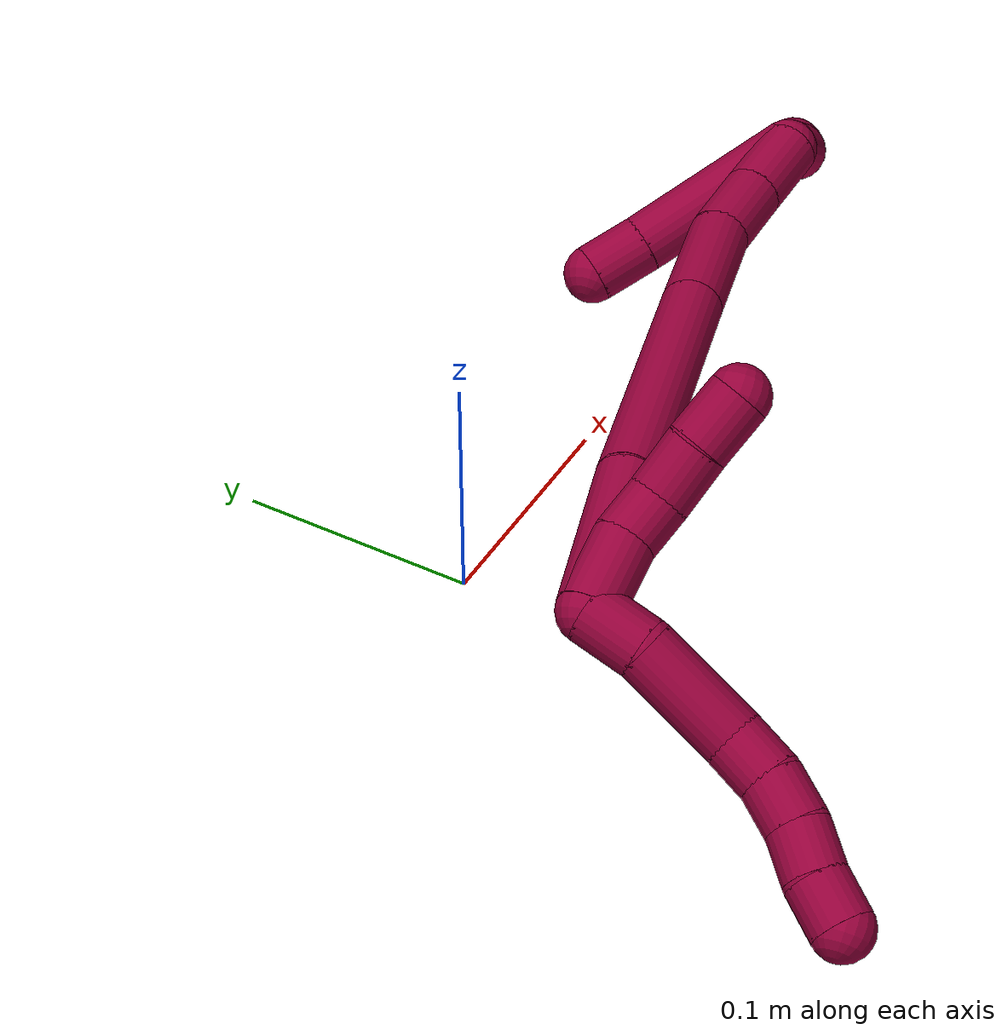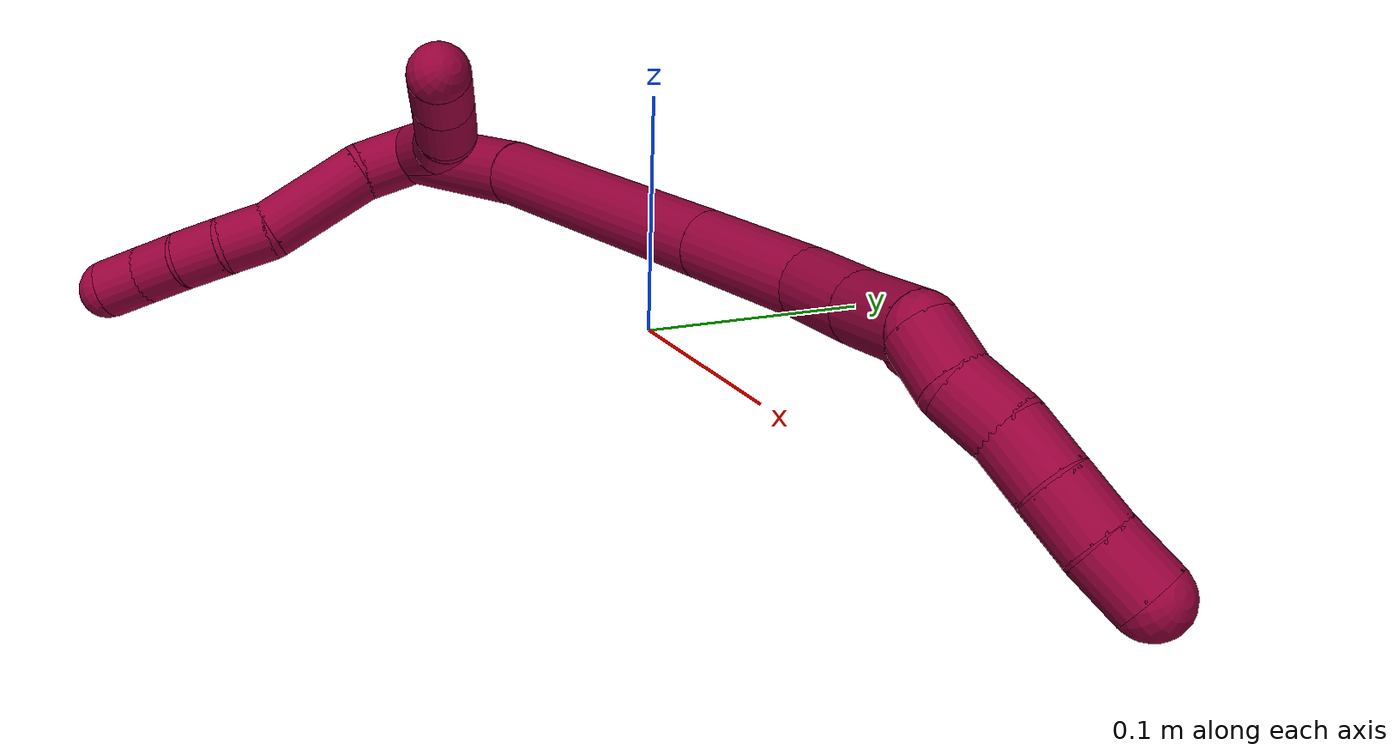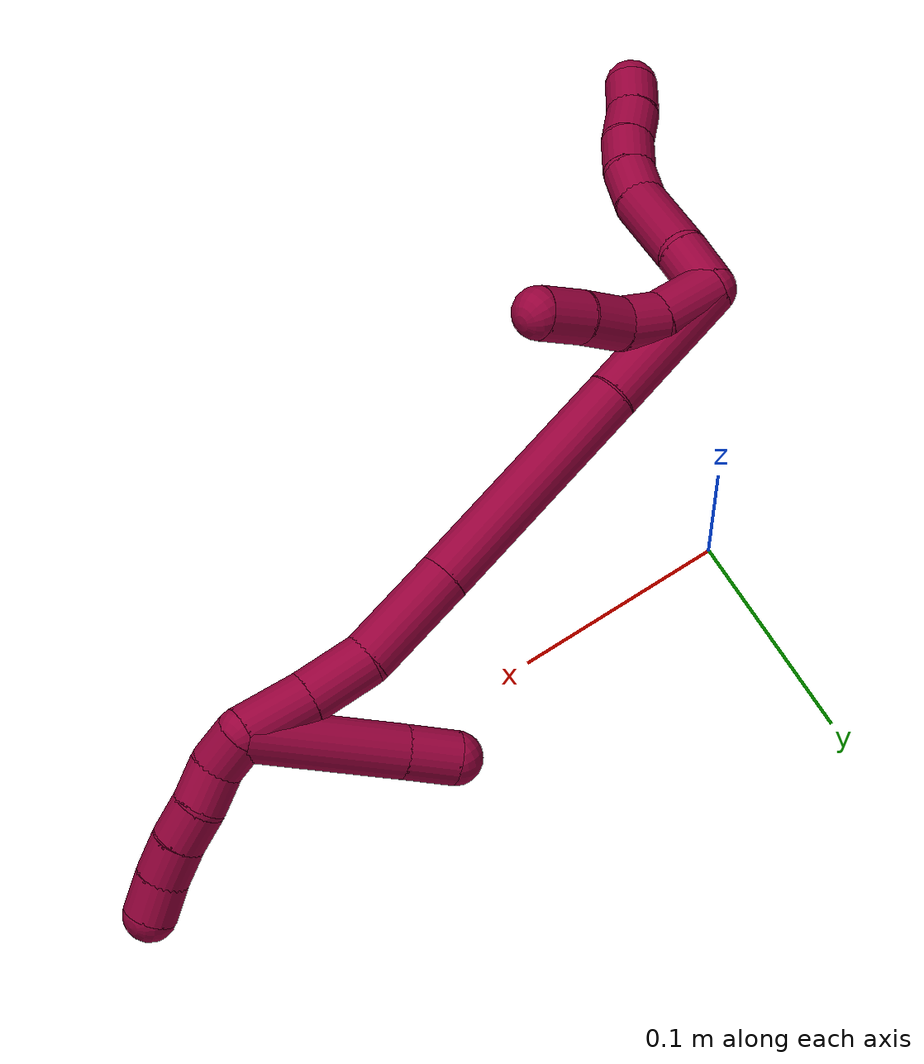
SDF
<sdf version="1.7">
 <world name="default">
  <model name="8">
   <static>0</static>
   <link name="8">
    <collision name="collision-cylinder-e_1_2_8">
     <pose>-0.004192 -0.0109 -0.003934 1.91719 -0.347099 -0.489322</pose>
     <geometry><cylinder><radius>0.0125</radius><length>0.024646</length></cylinder></geometry>
     <surface>
      <friction><ode><mu>1.16</mu><mu2>1.16</mu2><slip1>0</slip1><slip2>0</slip2></ode></friction>
      <contact><ode><kp>1e+06</kp><kd>1</kd><max_vel>0</max_vel><min_depth>0.001</min_depth></ode></contact>
     </surface>
    </collision>
    <visual name="visual-cylinder-e_1_2_8">
     <pose>-0.004192 -0.0109 -0.003934 1.91719 -0.347099 -0.489322</pose>
     <geometry><cylinder><radius>0.0125</radius><length>0.024646</length></cylinder></geometry>
     <material><ambient>0.584314 0 0.227451 1</ambient></material>
    </visual>
    <collision name="collision-cylinder-e_2_8_9">
     <pose>-0.01092 -0.042074 -0.017551 2.01634 -0.112379 -0.177922</pose>
     <geometry><cylinder><radius>0.0125</radius><length>0.045221</length></cylinder></geometry>
     <surface>
      <friction><ode><mu>1.16</mu><mu2>1.16</mu2><slip1>0</slip1><slip2>0</slip2></ode></friction>
      <contact><ode><kp>1e+06</kp><kd>1</kd><max_vel>0</max_vel><min_depth>0.001</min_depth></ode></contact>
     </surface>
    </collision>
    <visual name="visual-cylinder-e_2_8_9">
     <pose>-0.01092 -0.042074 -0.017551 2.01634 -0.112379 -0.177922</pose>
     <geometry><cylinder><radius>0.0125</radius><length>0.045221</length></cylinder></geometry>
     <material><ambient>0.584314 0 0.227451 1</ambient></material>
    </visual>
    <collision name="collision-cylinder-e_3_9_10">
     <pose>-0.016802 -0.070125 -0.032621 2.17672 -0.340052 -0.633564</pose>
     <geometry><cylinder><radius>0.0125</radius><length>0.020069</length></cylinder></geometry>
     <surface>
      <friction><ode><mu>1.16</mu><mu2>1.16</mu2><slip1>0</slip1><slip2>0</slip2></ode></friction>
      <contact><ode><kp>1e+06</kp><kd>1</kd><max_vel>0</max_vel><min_depth>0.001</min_depth></ode></contact>
     </surface>
    </collision>
    <visual name="visual-cylinder-e_3_9_10">
     <pose>-0.016802 -0.070125 -0.032621 2.17672 -0.340052 -0.633564</pose>
     <geometry><cylinder><radius>0.0125</radius><length>0.020069</length></cylinder></geometry>
     <material><ambient>0.584314 0 0.227451 1</ambient></material>
    </visual>
    <collision name="collision-cylinder-e_4_10_11">
     <pose>-0.023111 -0.084289 -0.045149 2.41169 -0.299809 -0.752922</pose>
     <geometry><cylinder><radius>0.0125</radius><length>0.020058</length></cylinder></geometry>
     <surface>
      <friction><ode><mu>1.16</mu><mu2>1.16</mu2><slip1>0</slip1><slip2>0</slip2></ode></friction>
      <contact><ode><kp>1e+06</kp><kd>1</kd><max_vel>0</max_vel><min_depth>0.001</min_depth></ode></contact>
     </surface>
    </collision>
    <visual name="visual-cylinder-e_4_10_11">
     <pose>-0.023111 -0.084289 -0.045149 2.41169 -0.299809 -0.752922</pose>
     <geometry><cylinder><radius>0.0125</radius><length>0.020058</length></cylinder></geometry>
     <material><ambient>0.584314 0 0.227451 1</ambient></material>
    </visual>
    <collision name="collision-cylinder-e_5_11_12">
     <pose>-0.028453 -0.095776 -0.06056 2.58928 -0.240245 -0.805287</pose>
     <geometry><cylinder><radius>0.0125</radius><length>0.020005</length></cylinder></geometry>
     <surface>
      <friction><ode><mu>1.16</mu><mu2>1.16</mu2><slip1>0</slip1><slip2>0</slip2></ode></friction>
      <contact><ode><kp>1e+06</kp><kd>1</kd><max_vel>0</max_vel><min_depth>0.001</min_depth></ode></contact>
     </surface>
    </collision>
    <visual name="visual-cylinder-e_5_11_12">
     <pose>-0.028453 -0.095776 -0.06056 2.58928 -0.240245 -0.805287</pose>
     <geometry><cylinder><radius>0.0125</radius><length>0.020005</length></cylinder></geometry>
     <material><ambient>0.584314 0 0.227451 1</ambient></material>
    </visual>
    <collision name="collision-cylinder-e_6_12_6">
     <pose>-0.0335 -0.107228 -0.076077 2.42156 -0.270019 -0.692632</pose>
     <geometry><cylinder><radius>0.0125</radius><length>0.020001</length></cylinder></geometry>
     <surface>
      <friction><ode><mu>1.16</mu><mu2>1.16</mu2><slip1>0</slip1><slip2>0</slip2></ode></friction>
      <contact><ode><kp>1e+06</kp><kd>1</kd><max_vel>0</max_vel><min_depth>0.001</min_depth></ode></contact>
     </surface>
    </collision>
    <visual name="visual-cylinder-e_6_12_6">
     <pose>-0.0335 -0.107228 -0.076077 2.42156 -0.270019 -0.692632</pose>
     <geometry><cylinder><radius>0.0125</radius><length>0.020001</length></cylinder></geometry>
     <material><ambient>0.584314 0 0.227451 1</ambient></material>
    </visual>
    <collision name="collision-cylinder-e_1_2_13">
     <pose>0.001202 -0.002585 0.015541 0.164834 0.076172 0.006295</pose>
     <geometry><cylinder><radius>0.0125</radius><length>0.031602</length></cylinder></geometry>
     <surface>
      <friction><ode><mu>1.16</mu><mu2>1.16</mu2><slip1>0</slip1><slip2>0</slip2></ode></friction>
      <contact><ode><kp>1e+06</kp><kd>1</kd><max_vel>0</max_vel><min_depth>0.001</min_depth></ode></contact>
     </surface>
    </collision>
    <visual name="visual-cylinder-e_1_2_13">
     <pose>0.001202 -0.002585 0.015541 0.164834 0.076172 0.006295</pose>
     <geometry><cylinder><radius>0.0125</radius><length>0.031602</length></cylinder></geometry>
     <material><ambient>0.584314 0 0.227451 1</ambient></material>
    </visual>
    <collision name="collision-cylinder-e_2_13_14">
     <pose>0.000277 -0.008328 0.040635 0.319207 -0.20847 -0.033677</pose>
     <geometry><cylinder><radius>0.0125</radius><length>0.020566</length></cylinder></geometry>
     <surface>
      <friction><ode><mu>1.16</mu><mu2>1.16</mu2><slip1>0</slip1><slip2>0</slip2></ode></friction>
      <contact><ode><kp>1e+06</kp><kd>1</kd><max_vel>0</max_vel><min_depth>0.001</min_depth></ode></contact>
     </surface>
    </collision>
    <visual name="visual-cylinder-e_2_13_14">
     <pose>0.000277 -0.008328 0.040635 0.319207 -0.20847 -0.033677</pose>
     <geometry><cylinder><radius>0.0125</radius><length>0.020566</length></cylinder></geometry>
     <material><ambient>0.584314 0 0.227451 1</ambient></material>
    </visual>
    <collision name="collision-cylinder-e_3_14_15">
     <pose>-0.007705 -0.013701 0.060345 0.214797 -0.512789 -0.056515</pose>
     <geometry><cylinder><radius>0.0125</radius><length>0.023862</length></cylinder></geometry>
     <surface>
      <friction><ode><mu>1.16</mu><mu2>1.16</mu2><slip1>0</slip1><slip2>0</slip2></ode></friction>
      <contact><ode><kp>1e+06</kp><kd>1</kd><max_vel>0</max_vel><min_depth>0.001</min_depth></ode></contact>
     </surface>
    </collision>
    <visual name="visual-cylinder-e_3_14_15">
     <pose>-0.007705 -0.013701 0.060345 0.214797 -0.512789 -0.056515</pose>
     <geometry><cylinder><radius>0.0125</radius><length>0.023862</length></cylinder></geometry>
     <material><ambient>0.584314 0 0.227451 1</ambient></material>
    </visual>
    <collision name="collision-cylinder-e_4_15_5">
     <pose>-0.018606 -0.01902 0.08092 0.289507 -0.434737 -0.064368</pose>
     <geometry><cylinder><radius>0.0125</radius><length>0.02397</length></cylinder></geometry>
     <surface>
      <friction><ode><mu>1.16</mu><mu2>1.16</mu2><slip1>0</slip1><slip2>0</slip2></ode></friction>
      <contact><ode><kp>1e+06</kp><kd>1</kd><max_vel>0</max_vel><min_depth>0.001</min_depth></ode></contact>
     </surface>
    </collision>
    <visual name="visual-cylinder-e_4_15_5">
     <pose>-0.018606 -0.01902 0.08092 0.289507 -0.434737 -0.064368</pose>
     <geometry><cylinder><radius>0.0125</radius><length>0.02397</length></cylinder></geometry>
     <material><ambient>0.584314 0 0.227451 1</ambient></material>
    </visual>
    <collision name="collision-cylinder-e_1_2_16">
     <pose>0.013499 -0.00315 0.032147 0.097683 0.395854 0.019606</pose>
     <geometry><cylinder><radius>0.0125</radius><length>0.070016</length></cylinder></geometry>
     <surface>
      <friction><ode><mu>1.16</mu><mu2>1.16</mu2><slip1>0</slip1><slip2>0</slip2></ode></friction>
      <contact><ode><kp>1e+06</kp><kd>1</kd><max_vel>0</max_vel><min_depth>0.001</min_depth></ode></contact>
     </surface>
    </collision>
    <visual name="visual-cylinder-e_1_2_16">
     <pose>0.013499 -0.00315 0.032147 0.097683 0.395854 0.019606</pose>
     <geometry><cylinder><radius>0.0125</radius><length>0.070016</length></cylinder></geometry>
     <material><ambient>0.584314 0 0.227451 1</ambient></material>
    </visual>
    <collision name="collision-cylinder-e_2_16_17">
     <pose>0.052465 -0.015172 0.114365 0.17536 0.464297 0.041558</pose>
     <geometry><cylinder><radius>0.0125</radius><length>0.113746</length></cylinder></geometry>
     <surface>
      <friction><ode><mu>1.16</mu><mu2>1.16</mu2><slip1>0</slip1><slip2>0</slip2></ode></friction>
      <contact><ode><kp>1e+06</kp><kd>1</kd><max_vel>0</max_vel><min_depth>0.001</min_depth></ode></contact>
     </surface>
    </collision>
    <visual name="visual-cylinder-e_2_16_17">
     <pose>0.052465 -0.015172 0.114365 0.17536 0.464297 0.041558</pose>
     <geometry><cylinder><radius>0.0125</radius><length>0.113746</length></cylinder></geometry>
     <material><ambient>0.584314 0 0.227451 1</ambient></material>
    </visual>
    <collision name="collision-cylinder-e_3_17_18">
     <pose>0.089299 -0.028278 0.186882 0.186451 0.461771 0.043951</pose>
     <geometry><cylinder><radius>0.0125</radius><length>0.051024</length></cylinder></geometry>
     <surface>
      <friction><ode><mu>1.16</mu><mu2>1.16</mu2><slip1>0</slip1><slip2>0</slip2></ode></friction>
      <contact><ode><kp>1e+06</kp><kd>1</kd><max_vel>0</max_vel><min_depth>0.001</min_depth></ode></contact>
     </surface>
    </collision>
    <visual name="visual-cylinder-e_3_17_18">
     <pose>0.089299 -0.028278 0.186882 0.186451 0.461771 0.043951</pose>
     <geometry><cylinder><radius>0.0125</radius><length>0.051024</length></cylinder></geometry>
     <material><ambient>0.584314 0 0.227451 1</ambient></material>
    </visual>
    <collision name="collision-cylinder-e_4_18_19">
     <pose>0.105181 -0.037836 0.223777 0.352985 0.285178 0.051197</pose>
     <geometry><cylinder><radius>0.0125</radius><length>0.032099</length></cylinder></geometry>
     <surface>
      <friction><ode><mu>1.16</mu><mu2>1.16</mu2><slip1>0</slip1><slip2>0</slip2></ode></friction>
      <contact><ode><kp>1e+06</kp><kd>1</kd><max_vel>0</max_vel><min_depth>0.001</min_depth></ode></contact>
     </surface>
    </collision>
    <visual name="visual-cylinder-e_4_18_19">
     <pose>0.105181 -0.037836 0.223777 0.352985 0.285178 0.051197</pose>
     <geometry><cylinder><radius>0.0125</radius><length>0.032099</length></cylinder></geometry>
     <material><ambient>0.584314 0 0.227451 1</ambient></material>
    </visual>
    <collision name="collision-cylinder-e_5_19_1">
     <pose>0.113008 -0.04878 0.253448 0.353732 0.201381 0.036112</pose>
     <geometry><cylinder><radius>0.0125</radius><length>0.033116</length></cylinder></geometry>
     <surface>
      <friction><ode><mu>1.16</mu><mu2>1.16</mu2><slip1>0</slip1><slip2>0</slip2></ode></friction>
      <contact><ode><kp>1e+06</kp><kd>1</kd><max_vel>0</max_vel><min_depth>0.001</min_depth></ode></contact>
     </surface>
    </collision>
    <visual name="visual-cylinder-e_5_19_1">
     <pose>0.113008 -0.04878 0.253448 0.353732 0.201381 0.036112</pose>
     <geometry><cylinder><radius>0.0125</radius><length>0.033116</length></cylinder></geometry>
     <material><ambient>0.584314 0 0.227451 1</ambient></material>
    </visual>
    <collision name="collision-cylinder-e_1_1_20">
     <pose>0.124006 -0.058867 0.273245 0.773116 0.876739 0.377097</pose>
     <geometry><cylinder><radius>0.0125</radius><length>0.02</length></cylinder></geometry>
     <surface>
      <friction><ode><mu>1.16</mu><mu2>1.16</mu2><slip1>0</slip1><slip2>0</slip2></ode></friction>
      <contact><ode><kp>1e+06</kp><kd>1</kd><max_vel>0</max_vel><min_depth>0.001</min_depth></ode></contact>
     </surface>
    </collision>
    <visual name="visual-cylinder-e_1_1_20">
     <pose>0.124006 -0.058867 0.273245 0.773116 0.876739 0.377097</pose>
     <geometry><cylinder><radius>0.0125</radius><length>0.02</length></cylinder></geometry>
     <material><ambient>0.584314 0 0.227451 1</ambient></material>
    </visual>
    <collision name="collision-cylinder-e_2_20_21">
     <pose>0.140036 -0.064849 0.283124 0.278358 0.986876 0.150394</pose>
     <geometry><cylinder><radius>0.0125</radius><length>0.02</length></cylinder></geometry>
     <surface>
      <friction><ode><mu>1.16</mu><mu2>1.16</mu2><slip1>0</slip1><slip2>0</slip2></ode></friction>
      <contact><ode><kp>1e+06</kp><kd>1</kd><max_vel>0</max_vel><min_depth>0.001</min_depth></ode></contact>
     </surface>
    </collision>
    <visual name="visual-cylinder-e_2_20_21">
     <pose>0.140036 -0.064849 0.283124 0.278358 0.986876 0.150394</pose>
     <geometry><cylinder><radius>0.0125</radius><length>0.02</length></cylinder></geometry>
     <material><ambient>0.584314 0 0.227451 1</ambient></material>
    </visual>
    <collision name="collision-cylinder-e_3_21_22">
     <pose>0.15673 -0.069637 0.292846 0.637365 0.98834 0.351827</pose>
     <geometry><cylinder><radius>0.0125</radius><length>0.02</length></cylinder></geometry>
     <surface>
      <friction><ode><mu>1.16</mu><mu2>1.16</mu2><slip1>0</slip1><slip2>0</slip2></ode></friction>
      <contact><ode><kp>1e+06</kp><kd>1</kd><max_vel>0</max_vel><min_depth>0.001</min_depth></ode></contact>
     </surface>
    </collision>
    <visual name="visual-cylinder-e_3_21_22">
     <pose>0.15673 -0.069637 0.292846 0.637365 0.98834 0.351827</pose>
     <geometry><cylinder><radius>0.0125</radius><length>0.02</length></cylinder></geometry>
     <material><ambient>0.584314 0 0.227451 1</ambient></material>
    </visual>
    <collision name="collision-cylinder-e_4_22_23">
     <pose>0.17395 -0.075579 0.301038 0.615739 1.09056 0.381113</pose>
     <geometry><cylinder><radius>0.0125</radius><length>0.02</length></cylinder></geometry>
     <surface>
      <friction><ode><mu>1.16</mu><mu2>1.16</mu2><slip1>0</slip1><slip2>0</slip2></ode></friction>
      <contact><ode><kp>1e+06</kp><kd>1</kd><max_vel>0</max_vel><min_depth>0.001</min_depth></ode></contact>
     </surface>
    </collision>
    <visual name="visual-cylinder-e_4_22_23">
     <pose>0.17395 -0.075579 0.301038 0.615739 1.09056 0.381113</pose>
     <geometry><cylinder><radius>0.0125</radius><length>0.02</length></cylinder></geometry>
     <material><ambient>0.584314 0 0.227451 1</ambient></material>
    </visual>
    <collision name="collision-cylinder-e_5_23_4">
     <pose>0.191917 -0.079874 0.308628 0.402637 1.14276 0.260927</pose>
     <geometry><cylinder><radius>0.0125</radius><length>0.02</length></cylinder></geometry>
     <surface>
      <friction><ode><mu>1.16</mu><mu2>1.16</mu2><slip1>0</slip1><slip2>0</slip2></ode></friction>
      <contact><ode><kp>1e+06</kp><kd>1</kd><max_vel>0</max_vel><min_depth>0.001</min_depth></ode></contact>
     </surface>
    </collision>
    <visual name="visual-cylinder-e_5_23_4">
     <pose>0.191917 -0.079874 0.308628 0.402637 1.14276 0.260927</pose>
     <geometry><cylinder><radius>0.0125</radius><length>0.02</length></cylinder></geometry>
     <material><ambient>0.584314 0 0.227451 1</ambient></material>
    </visual>
    <collision name="collision-cylinder-e_1_1_24">
     <pose>0.129315 -0.033942 0.239752 -2.52585 0.351654 -1.01901</pose>
     <geometry><cylinder><radius>0.0125</radius><length>0.075459</length></cylinder></geometry>
     <surface>
      <friction><ode><mu>1.16</mu><mu2>1.16</mu2><slip1>0</slip1><slip2>0</slip2></ode></friction>
      <contact><ode><kp>1e+06</kp><kd>1</kd><max_vel>0</max_vel><min_depth>0.001</min_depth></ode></contact>
     </surface>
    </collision>
    <visual name="visual-cylinder-e_1_1_24">
     <pose>0.129315 -0.033942 0.239752 -2.52585 0.351654 -1.01901</pose>
     <geometry><cylinder><radius>0.0125</radius><length>0.075459</length></cylinder></geometry>
     <material><ambient>0.584314 0 0.227451 1</ambient></material>
    </visual>
    <collision name="collision-cylinder-e_2_24_3">
     <pose>0.146411 -0.006452 0.201655 -2.48796 0.340612 -0.938998</pose>
     <geometry><cylinder><radius>0.0125</radius><length>0.024541</length></cylinder></geometry>
     <surface>
      <friction><ode><mu>1.16</mu><mu2>1.16</mu2><slip1>0</slip1><slip2>0</slip2></ode></friction>
      <contact><ode><kp>1e+06</kp><kd>1</kd><max_vel>0</max_vel><min_depth>0.001</min_depth></ode></contact>
     </surface>
    </collision>
    <visual name="visual-cylinder-e_2_24_3">
     <pose>0.146411 -0.006452 0.201655 -2.48796 0.340612 -0.938998</pose>
     <geometry><cylinder><radius>0.0125</radius><length>0.024541</length></cylinder></geometry>
     <material><ambient>0.584314 0 0.227451 1</ambient></material>
    </visual>
    <collision name="collision-sphere-3">
     <pose>0.15051 0.000581 0.192473 0 -0 0</pose>
     <geometry><sphere><radius>0.0125</radius></sphere></geometry>
     <surface>
      <friction><ode><mu>1.16</mu><mu2>1.16</mu2><slip1>0</slip1><slip2>0</slip2></ode></friction>
      <contact><ode><kp>1e+06</kp><kd>1</kd><max_vel>0</max_vel><min_depth>0.001</min_depth></ode></contact>
     </surface>
    </collision>
    <visual name="visual-sphere-3">
     <pose>0.15051 0.000581 0.192473 0 -0 0</pose>
     <geometry><sphere><radius>0.0125</radius></sphere></geometry>
     <material><ambient>0.584314 0 0.227451 1</ambient></material>
    </visual>
    <collision name="collision-sphere-24">
     <pose>0.142311 -0.013484 0.210836 0 -0 0</pose>
     <geometry><sphere><radius>0.0125</radius></sphere></geometry>
     <surface>
      <friction><ode><mu>1.16</mu><mu2>1.16</mu2><slip1>0</slip1><slip2>0</slip2></ode></friction>
      <contact><ode><kp>1e+06</kp><kd>1</kd><max_vel>0</max_vel><min_depth>0.001</min_depth></ode></contact>
     </surface>
    </collision>
    <visual name="visual-sphere-24">
     <pose>0.142311 -0.013484 0.210836 0 -0 0</pose>
     <geometry><sphere><radius>0.0125</radius></sphere></geometry>
     <material><ambient>0.584314 0 0.227451 1</ambient></material>
    </visual>
    <collision name="collision-sphere-4">
     <pose>0.201015 -0.0815 0.312447 0 -0 0</pose>
     <geometry><sphere><radius>0.0125</radius></sphere></geometry>
     <surface>
      <friction><ode><mu>1.16</mu><mu2>1.16</mu2><slip1>0</slip1><slip2>0</slip2></ode></friction>
      <contact><ode><kp>1e+06</kp><kd>1</kd><max_vel>0</max_vel><min_depth>0.001</min_depth></ode></contact>
     </surface>
    </collision>
    <visual name="visual-sphere-4">
     <pose>0.201015 -0.0815 0.312447 0 -0 0</pose>
     <geometry><sphere><radius>0.0125</radius></sphere></geometry>
     <material><ambient>0.584314 0 0.227451 1</ambient></material>
    </visual>
    <collision name="collision-sphere-23">
     <pose>0.182819 -0.078247 0.304809 0 -0 0</pose>
     <geometry><sphere><radius>0.0125</radius></sphere></geometry>
     <surface>
      <friction><ode><mu>1.16</mu><mu2>1.16</mu2><slip1>0</slip1><slip2>0</slip2></ode></friction>
      <contact><ode><kp>1e+06</kp><kd>1</kd><max_vel>0</max_vel><min_depth>0.001</min_depth></ode></contact>
     </surface>
    </collision>
    <visual name="visual-sphere-23">
     <pose>0.182819 -0.078247 0.304809 0 -0 0</pose>
     <geometry><sphere><radius>0.0125</radius></sphere></geometry>
     <material><ambient>0.584314 0 0.227451 1</ambient></material>
    </visual>
    <collision name="collision-sphere-22">
     <pose>0.165081 -0.072911 0.297267 0 -0 0</pose>
     <geometry><sphere><radius>0.0125</radius></sphere></geometry>
     <surface>
      <friction><ode><mu>1.16</mu><mu2>1.16</mu2><slip1>0</slip1><slip2>0</slip2></ode></friction>
      <contact><ode><kp>1e+06</kp><kd>1</kd><max_vel>0</max_vel><min_depth>0.001</min_depth></ode></contact>
     </surface>
    </collision>
    <visual name="visual-sphere-22">
     <pose>0.165081 -0.072911 0.297267 0 -0 0</pose>
     <geometry><sphere><radius>0.0125</radius></sphere></geometry>
     <material><ambient>0.584314 0 0.227451 1</ambient></material>
    </visual>
    <collision name="collision-sphere-21">
     <pose>0.148379 -0.066364 0.288425 0 -0 0</pose>
     <geometry><sphere><radius>0.0125</radius></sphere></geometry>
     <surface>
      <friction><ode><mu>1.16</mu><mu2>1.16</mu2><slip1>0</slip1><slip2>0</slip2></ode></friction>
      <contact><ode><kp>1e+06</kp><kd>1</kd><max_vel>0</max_vel><min_depth>0.001</min_depth></ode></contact>
     </surface>
    </collision>
    <visual name="visual-sphere-21">
     <pose>0.148379 -0.066364 0.288425 0 -0 0</pose>
     <geometry><sphere><radius>0.0125</radius></sphere></geometry>
     <material><ambient>0.584314 0 0.227451 1</ambient></material>
    </visual>
    <collision name="collision-sphere-20">
     <pose>0.131693 -0.063334 0.277824 0 -0 0</pose>
     <geometry><sphere><radius>0.0125</radius></sphere></geometry>
     <surface>
      <friction><ode><mu>1.16</mu><mu2>1.16</mu2><slip1>0</slip1><slip2>0</slip2></ode></friction>
      <contact><ode><kp>1e+06</kp><kd>1</kd><max_vel>0</max_vel><min_depth>0.001</min_depth></ode></contact>
     </surface>
    </collision>
    <visual name="visual-sphere-20">
     <pose>0.131693 -0.063334 0.277824 0 -0 0</pose>
     <geometry><sphere><radius>0.0125</radius></sphere></geometry>
     <material><ambient>0.584314 0 0.227451 1</ambient></material>
    </visual>
    <collision name="collision-sphere-12">
     <pose>-0.030833 -0.100873 -0.068831 0 -0 0</pose>
     <geometry><sphere><radius>0.0125</radius></sphere></geometry>
     <surface>
      <friction><ode><mu>1.16</mu><mu2>1.16</mu2><slip1>0</slip1><slip2>0</slip2></ode></friction>
      <contact><ode><kp>1e+06</kp><kd>1</kd><max_vel>0</max_vel><min_depth>0.001</min_depth></ode></contact>
     </surface>
    </collision>
    <visual name="visual-sphere-12">
     <pose>-0.030833 -0.100873 -0.068831 0 -0 0</pose>
     <geometry><sphere><radius>0.0125</radius></sphere></geometry>
     <material><ambient>0.584314 0 0.227451 1</ambient></material>
    </visual>
    <collision name="collision-sphere-11">
     <pose>-0.026073 -0.090678 -0.05229 0 -0 0</pose>
     <geometry><sphere><radius>0.0125</radius></sphere></geometry>
     <surface>
      <friction><ode><mu>1.16</mu><mu2>1.16</mu2><slip1>0</slip1><slip2>0</slip2></ode></friction>
      <contact><ode><kp>1e+06</kp><kd>1</kd><max_vel>0</max_vel><min_depth>0.001</min_depth></ode></contact>
     </surface>
    </collision>
    <visual name="visual-sphere-11">
     <pose>-0.026073 -0.090678 -0.05229 0 -0 0</pose>
     <geometry><sphere><radius>0.0125</radius></sphere></geometry>
     <material><ambient>0.584314 0 0.227451 1</ambient></material>
    </visual>
    <collision name="collision-sphere-10">
     <pose>-0.020149 -0.0779 -0.038009 0 -0 0</pose>
     <geometry><sphere><radius>0.0125</radius></sphere></geometry>
     <surface>
      <friction><ode><mu>1.16</mu><mu2>1.16</mu2><slip1>0</slip1><slip2>0</slip2></ode></friction>
      <contact><ode><kp>1e+06</kp><kd>1</kd><max_vel>0</max_vel><min_depth>0.001</min_depth></ode></contact>
     </surface>
    </collision>
    <visual name="visual-sphere-10">
     <pose>-0.020149 -0.0779 -0.038009 0 -0 0</pose>
     <geometry><sphere><radius>0.0125</radius></sphere></geometry>
     <material><ambient>0.584314 0 0.227451 1</ambient></material>
    </visual>
    <collision name="collision-sphere-9">
     <pose>-0.013455 -0.062349 -0.027233 0 -0 0</pose>
     <geometry><sphere><radius>0.0125</radius></sphere></geometry>
     <surface>
      <friction><ode><mu>1.16</mu><mu2>1.16</mu2><slip1>0</slip1><slip2>0</slip2></ode></friction>
      <contact><ode><kp>1e+06</kp><kd>1</kd><max_vel>0</max_vel><min_depth>0.001</min_depth></ode></contact>
     </surface>
    </collision>
    <visual name="visual-sphere-9">
     <pose>-0.013455 -0.062349 -0.027233 0 -0 0</pose>
     <geometry><sphere><radius>0.0125</radius></sphere></geometry>
     <material><ambient>0.584314 0 0.227451 1</ambient></material>
    </visual>
    <collision name="collision-sphere-2">
     <geometry><sphere><radius>0.0125</radius></sphere></geometry>
     <surface>
      <friction><ode><mu>1.16</mu><mu2>1.16</mu2><slip1>0</slip1><slip2>0</slip2></ode></friction>
      <contact><ode><kp>1e+06</kp><kd>1</kd><max_vel>0</max_vel><min_depth>0.001</min_depth></ode></contact>
     </surface>
    </collision>
    <visual name="visual-sphere-2">
     <geometry><sphere><radius>0.0125</radius></sphere></geometry>
     <material><ambient>0.584314 0 0.227451 1</ambient></material>
    </visual>
    <collision name="collision-sphere-19">
     <pose>0.109696 -0.04316 0.238229 0 -0 0</pose>
     <geometry><sphere><radius>0.0125</radius></sphere></geometry>
     <surface>
      <friction><ode><mu>1.16</mu><mu2>1.16</mu2><slip1>0</slip1><slip2>0</slip2></ode></friction>
      <contact><ode><kp>1e+06</kp><kd>1</kd><max_vel>0</max_vel><min_depth>0.001</min_depth></ode></contact>
     </surface>
    </collision>
    <visual name="visual-sphere-19">
     <pose>0.109696 -0.04316 0.238229 0 -0 0</pose>
     <geometry><sphere><radius>0.0125</radius></sphere></geometry>
     <material><ambient>0.584314 0 0.227451 1</ambient></material>
    </visual>
    <collision name="collision-sphere-8">
     <pose>-0.008384 -0.0218 -0.007869 0 -0 0</pose>
     <geometry><sphere><radius>0.0125</radius></sphere></geometry>
     <surface>
      <friction><ode><mu>1.16</mu><mu2>1.16</mu2><slip1>0</slip1><slip2>0</slip2></ode></friction>
      <contact><ode><kp>1e+06</kp><kd>1</kd><max_vel>0</max_vel><min_depth>0.001</min_depth></ode></contact>
     </surface>
    </collision>
    <visual name="visual-sphere-8">
     <pose>-0.008384 -0.0218 -0.007869 0 -0 0</pose>
     <geometry><sphere><radius>0.0125</radius></sphere></geometry>
     <material><ambient>0.584314 0 0.227451 1</ambient></material>
    </visual>
    <collision name="collision-sphere-6">
     <pose>-0.036168 -0.113584 -0.083323 0 -0 0</pose>
     <geometry><sphere><radius>0.0125</radius></sphere></geometry>
     <surface>
      <friction><ode><mu>1.16</mu><mu2>1.16</mu2><slip1>0</slip1><slip2>0</slip2></ode></friction>
      <contact><ode><kp>1e+06</kp><kd>1</kd><max_vel>0</max_vel><min_depth>0.001</min_depth></ode></contact>
     </surface>
    </collision>
    <visual name="visual-sphere-6">
     <pose>-0.036168 -0.113584 -0.083323 0 -0 0</pose>
     <geometry><sphere><radius>0.0125</radius></sphere></geometry>
     <material><ambient>0.584314 0 0.227451 1</ambient></material>
    </visual>
    <collision name="collision-sphere-13">
     <pose>0.002405 -0.00517 0.031083 0 -0 0</pose>
     <geometry><sphere><radius>0.0125</radius></sphere></geometry>
     <surface>
      <friction><ode><mu>1.16</mu><mu2>1.16</mu2><slip1>0</slip1><slip2>0</slip2></ode></friction>
      <contact><ode><kp>1e+06</kp><kd>1</kd><max_vel>0</max_vel><min_depth>0.001</min_depth></ode></contact>
     </surface>
    </collision>
    <visual name="visual-sphere-13">
     <pose>0.002405 -0.00517 0.031083 0 -0 0</pose>
     <geometry><sphere><radius>0.0125</radius></sphere></geometry>
     <material><ambient>0.584314 0 0.227451 1</ambient></material>
    </visual>
    <collision name="collision-sphere-14">
     <pose>-0.001852 -0.011485 0.050187 0 -0 0</pose>
     <geometry><sphere><radius>0.0125</radius></sphere></geometry>
     <surface>
      <friction><ode><mu>1.16</mu><mu2>1.16</mu2><slip1>0</slip1><slip2>0</slip2></ode></friction>
      <contact><ode><kp>1e+06</kp><kd>1</kd><max_vel>0</max_vel><min_depth>0.001</min_depth></ode></contact>
     </surface>
    </collision>
    <visual name="visual-sphere-14">
     <pose>-0.001852 -0.011485 0.050187 0 -0 0</pose>
     <geometry><sphere><radius>0.0125</radius></sphere></geometry>
     <material><ambient>0.584314 0 0.227451 1</ambient></material>
    </visual>
    <collision name="collision-sphere-15">
     <pose>-0.013559 -0.015917 0.070503 0 -0 0</pose>
     <geometry><sphere><radius>0.0125</radius></sphere></geometry>
     <surface>
      <friction><ode><mu>1.16</mu><mu2>1.16</mu2><slip1>0</slip1><slip2>0</slip2></ode></friction>
      <contact><ode><kp>1e+06</kp><kd>1</kd><max_vel>0</max_vel><min_depth>0.001</min_depth></ode></contact>
     </surface>
    </collision>
    <visual name="visual-sphere-15">
     <pose>-0.013559 -0.015917 0.070503 0 -0 0</pose>
     <geometry><sphere><radius>0.0125</radius></sphere></geometry>
     <material><ambient>0.584314 0 0.227451 1</ambient></material>
    </visual>
    <collision name="collision-sphere-5">
     <pose>-0.023654 -0.022123 0.091338 0 -0 0</pose>
     <geometry><sphere><radius>0.0125</radius></sphere></geometry>
     <surface>
      <friction><ode><mu>1.16</mu><mu2>1.16</mu2><slip1>0</slip1><slip2>0</slip2></ode></friction>
      <contact><ode><kp>1e+06</kp><kd>1</kd><max_vel>0</max_vel><min_depth>0.001</min_depth></ode></contact>
     </surface>
    </collision>
    <visual name="visual-sphere-5">
     <pose>-0.023654 -0.022123 0.091338 0 -0 0</pose>
     <geometry><sphere><radius>0.0125</radius></sphere></geometry>
     <material><ambient>0.584314 0 0.227451 1</ambient></material>
    </visual>
    <collision name="collision-sphere-16">
     <pose>0.026998 -0.0063 0.064293 0 -0 0</pose>
     <geometry><sphere><radius>0.0125</radius></sphere></geometry>
     <surface>
      <friction><ode><mu>1.16</mu><mu2>1.16</mu2><slip1>0</slip1><slip2>0</slip2></ode></friction>
      <contact><ode><kp>1e+06</kp><kd>1</kd><max_vel>0</max_vel><min_depth>0.001</min_depth></ode></contact>
     </surface>
    </collision>
    <visual name="visual-sphere-16">
     <pose>0.026998 -0.0063 0.064293 0 -0 0</pose>
     <geometry><sphere><radius>0.0125</radius></sphere></geometry>
     <material><ambient>0.584314 0 0.227451 1</ambient></material>
    </visual>
    <collision name="collision-sphere-17">
     <pose>0.077932 -0.024044 0.164438 0 -0 0</pose>
     <geometry><sphere><radius>0.0125</radius></sphere></geometry>
     <surface>
      <friction><ode><mu>1.16</mu><mu2>1.16</mu2><slip1>0</slip1><slip2>0</slip2></ode></friction>
      <contact><ode><kp>1e+06</kp><kd>1</kd><max_vel>0</max_vel><min_depth>0.001</min_depth></ode></contact>
     </surface>
    </collision>
    <visual name="visual-sphere-17">
     <pose>0.077932 -0.024044 0.164438 0 -0 0</pose>
     <geometry><sphere><radius>0.0125</radius></sphere></geometry>
     <material><ambient>0.584314 0 0.227451 1</ambient></material>
    </visual>
    <collision name="collision-sphere-18">
     <pose>0.100665 -0.032512 0.209326 0 -0 0</pose>
     <geometry><sphere><radius>0.0125</radius></sphere></geometry>
     <surface>
      <friction><ode><mu>1.16</mu><mu2>1.16</mu2><slip1>0</slip1><slip2>0</slip2></ode></friction>
      <contact><ode><kp>1e+06</kp><kd>1</kd><max_vel>0</max_vel><min_depth>0.001</min_depth></ode></contact>
     </surface>
    </collision>
    <visual name="visual-sphere-18">
     <pose>0.100665 -0.032512 0.209326 0 -0 0</pose>
     <geometry><sphere><radius>0.0125</radius></sphere></geometry>
     <material><ambient>0.584314 0 0.227451 1</ambient></material>
    </visual>
    <collision name="collision-sphere-1">
     <pose>0.11632 -0.0544 0.268667 0 -0 0</pose>
     <geometry><sphere><radius>0.0125</radius></sphere></geometry>
     <surface>
      <friction><ode><mu>1.16</mu><mu2>1.16</mu2><slip1>0</slip1><slip2>0</slip2></ode></friction>
      <contact><ode><kp>1e+06</kp><kd>1</kd><max_vel>0</max_vel><min_depth>0.001</min_depth></ode></contact>
     </surface>
    </collision>
    <visual name="visual-sphere-1">
     <pose>0.11632 -0.0544 0.268667 0 -0 0</pose>
     <geometry><sphere><radius>0.0125</radius></sphere></geometry>
     <material><ambient>0.584314 0 0.227451 1</ambient></material>
    </visual>
    <inertial>
     <pose>0.059264 -0.035041 0.122815 0 -0 0</pose>
     <mass>0.75</mass>
     <inertia>
      <ixx>0.000192</ixx>
      <ixy>0</ixy>
      <ixz>0</ixz>
      <iyy>0.000132</iyy>
      <iyz>0</iyz>
      <izz>-4.9e-05</izz>
     </inertia>
    </inertial>
   </link>
   <pose>-0.054487 -0.085334 0.07219 0.813565 0.899299 1.10798</pose>
  </model>
 </world>
</sdf>
